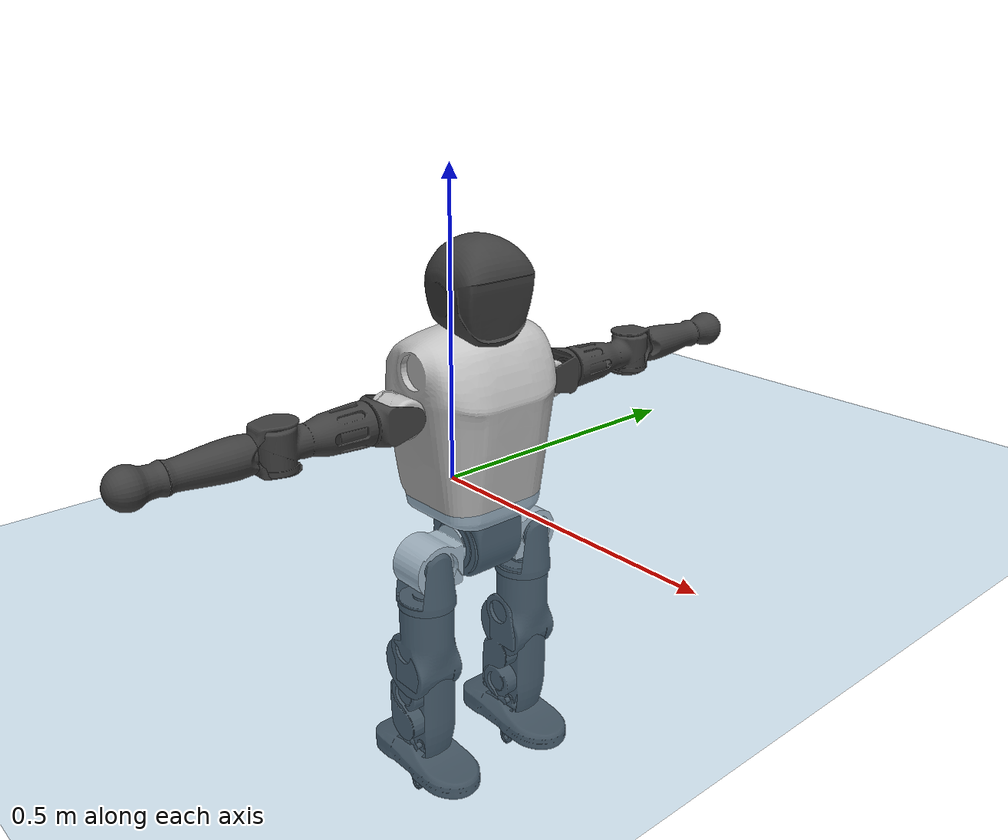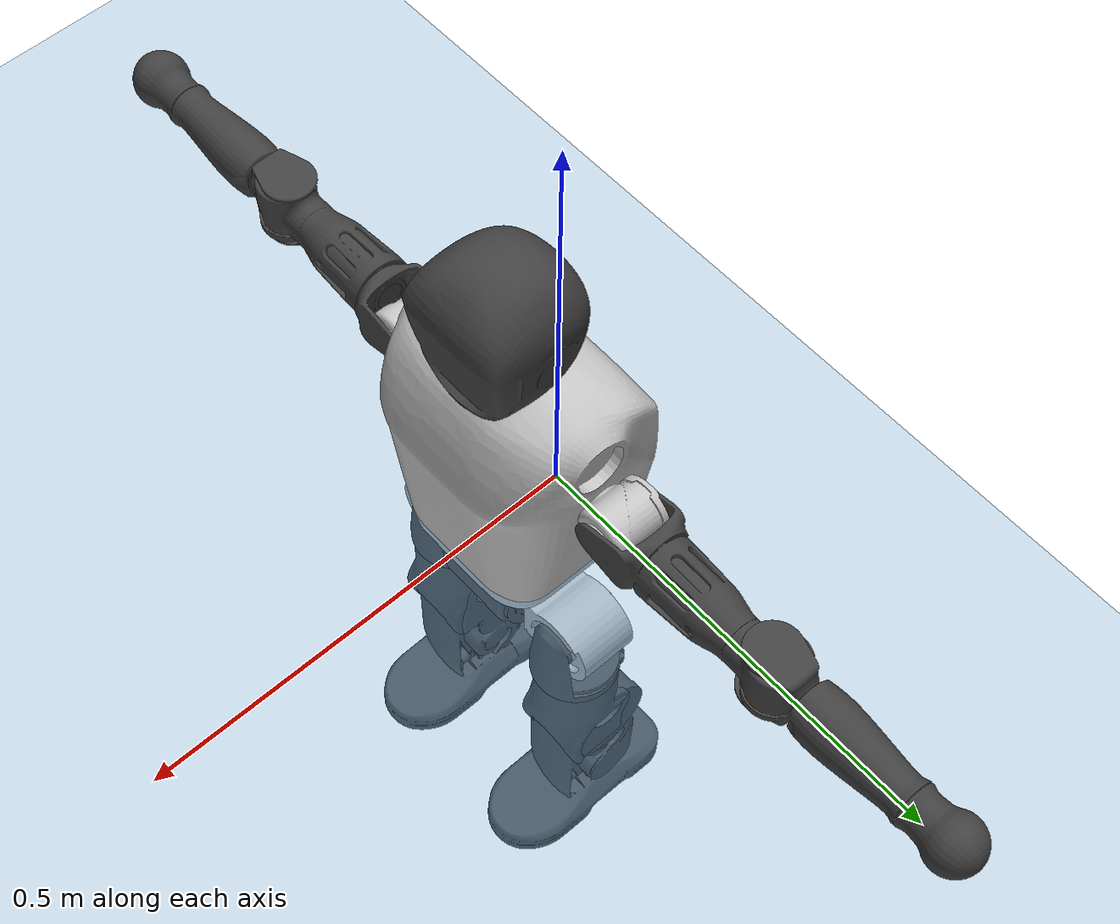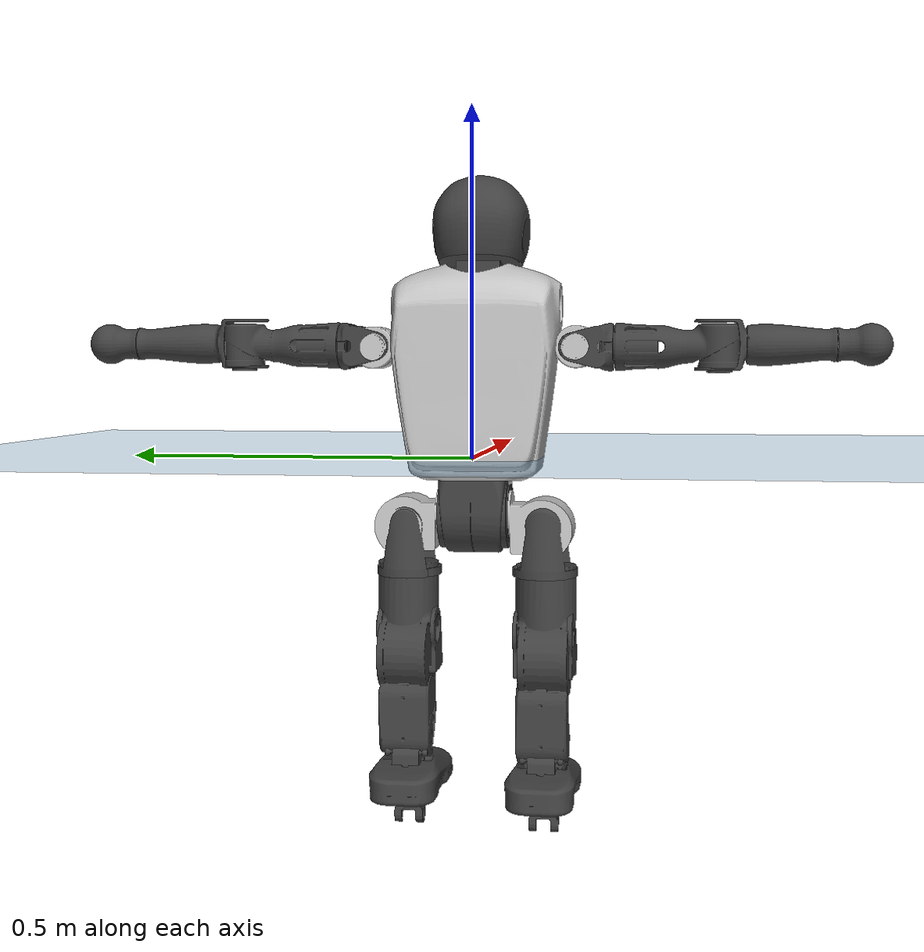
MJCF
<mujoco model="T1">
  <compiler angle="radian" assetdir="assets" balanceinertia="true" inertiafromgeom="false"/>

  <option timestep="0.005" density="1.2" viscosity="2e-05"/>

  <size nkey="1"/>

  <visual>
    <quality shadowsize="8192"/>
    <map shadowclip="0.5"/>
  </visual>

  <default>
    <default class="/">
      <joint armature="0.01" damping="0.01" frictionloss="0.1"/>
      <geom contype="0" conaffinity="0" group="1" solref="-1000 -80"/>
      <site size="0.01 0.005 0.005" group="5"/>
      <general forcelimited="true" biastype="affine" gainprm="25" biasprm="0 -25 -0.6"/>
      <default class="t1">
        <geom rgba="0.25 0.25 0.25 1"/>
        <default class="visual">
          <geom type="mesh" group="2"/>
        </default>
        <default class="collision">
          <geom group="3"/>
        </default>
        <default class="foot">
          <geom size="0.1115 0.05 0.015" type="box" condim="6" group="4" priority="1" solimp="0.015 1 0.015"/>
        </default>
        <default class="reward_collision_sphere">
          <geom group="5" rgba="1 0 0 1"/>
        </default>
      </default>
    </default>
  </default>

  <asset>
    <texture type="skybox" colorspace="auto" name="//unnamed_texture_0" builtin="gradient" rgb1="0.95 0.95 0.95" rgb2="0.95 0.95 0.95" width="100" height="600"/>
    <texture type="2d" colorspace="auto" name="texplane" builtin="checker" rgb1="0.345 0.575 0.748" rgb2="0.345 0.575 0.748" markrgb="1 1 1" width="512" height="512"/>
    <material name="MatPlane" class="/" texture="texplane" texuniform="true" texrepeat="2 2" specular="0.9"/>
    <mesh name="Trunk" class="/" file="Trunk.stl"/>
    <mesh name="H1" class="/" file="H1.stl"/>
    <mesh name="H2" class="/" file="H2.stl"/>
    <mesh name="AL1" class="/" file="AL1.stl"/>
    <mesh name="AL2" class="/" file="AL2.stl"/>
    <mesh name="AL3" class="/" file="AL3.stl"/>
    <mesh name="left_hand_link" class="/" file="left_hand_link.stl"/>
    <mesh name="AR1" class="/" file="AR1.stl"/>
    <mesh name="AR2" class="/" file="AR2.stl"/>
    <mesh name="AR3" class="/" file="AR3.stl"/>
    <mesh name="right_hand_link" class="/" file="right_hand_link.stl"/>
    <mesh name="Waist" class="/" file="Waist.stl"/>
    <mesh name="Hip_Pitch_Left" class="/" file="Hip_Pitch_Left.stl"/>
    <mesh name="Hip_Roll_Left" class="/" file="Hip_Roll_Left.stl"/>
    <mesh name="Hip_Yaw_Left" class="/" file="Hip_Yaw_Left.stl"/>
    <mesh name="Shank_Left" class="/" file="Shank_Left.stl"/>
    <mesh name="Ankle_Cross_Left" class="/" file="Ankle_Cross_Left.stl"/>
    <mesh name="left_foot_link" class="/" file="left_foot_link.stl"/>
    <mesh name="Hip_Pitch_Right" class="/" file="Hip_Pitch_Right.stl"/>
    <mesh name="Hip_Roll_Right" class="/" file="Hip_Roll_Right.stl"/>
    <mesh name="Hip_Yaw_Right" class="/" file="Hip_Yaw_Right.stl"/>
    <mesh name="Shank_Right" class="/" file="Shank_Right.stl"/>
    <mesh name="Ankle_Cross_Right" class="/" file="Ankle_Cross_Right.stl"/>
    <mesh name="right_foot_link" class="/" file="right_foot_link.stl"/>
  </asset>

  <worldbody>
    <geom name="floor" class="/" size="100 100 0.125" type="plane" group="0" material="MatPlane"/>
    <light name="toplight_shadow" class="/" pos="0 0 5" dir="0.0990148 0.0990148 -0.990148" type="directional" ambient="0.04 0.04 0.04" diffuse="0.55 0.55 0.55" specular="0.12 0.12 0.12"/>
    <light name="toplight_fill" class="/" pos="0 0 5" dir="0.0990148 0.0990148 -0.990148" type="directional" castshadow="false" ambient="0.04 0.04 0.04" diffuse="0.3 0.3 0.3" specular="0.08 0.08 0.08"/>
    <body name="trunk" childclass="t1" pos="0.000740164 2.45257e-05 0.00130268" quat="1 -0.000103342 -2.73071e-05 6.30806e-05">
      <inertial pos="0.049409 -0.000891636 0.07389" quat="0.999795 0.00530117 -0.0166866 -0.0101345" mass="7.61887" diaginertia="0.0588215 0.0614335 0.0109884"/>
      <joint name="//unnamed_joint_0" type="free" armature="0" damping="0" frictionloss="0"/>
      <geom name="//unnamed_geom_1" class="visual" rgba="0.76 0.76 0.76 1" mesh="Trunk"/>
      <geom name="//unnamed_geom_2" class="collision" size="0.0646075 0.0861433 0.129215" pos="0.054881 0 0.086178" type="box"/>
      <geom name="//unnamed_geom_3" class="reward_collision_sphere" size="0.0990648" pos="0.054881 0 0.071815"/>
      <geom name="//unnamed_geom_4" class="reward_collision_sphere" size="0.0129215" pos="0.054881 0.0808745 0"/>
      <geom name="//unnamed_geom_5" class="reward_collision_sphere" size="0.0129215" pos="0.054881 -0.0808745 0"/>
      <geom name="//unnamed_geom_6" class="reward_collision_sphere" size="0.0129215" pos="0.054881 0.101807 0.129267"/>
      <geom name="//unnamed_geom_7" class="reward_collision_sphere" size="0.0129215" pos="0.054881 -0.101807 0.129267"/>
      <site name="imu" pos="-0.00559917 -0.0020224 0.0139202" size="0.00861433"/>
      <camera name="track" pos="0 -1.90293 0" quat="0.707107 0.707107 0 0" mode="trackcom"/>
      <camera name="ego_camera" pos="0.111591 0 0.301623" quat="-0.5 -0.5 0.5 0.5"/>
      <body name="H1" pos="0.0532644 -0.00279984 0.17486" quat="0.999999 0.00128333 -0.000117165 4.97737e-05">
        <inertial pos="-0.00148719 -0.00285018 0.0397262" quat="0.763608 -0.0232237 0.00827852 0.64521" mass="0.277383" diaginertia="0.000152786 0.000173705 2.84791e-05"/>
        <joint name="AAHead_yaw" pos="0 0 0" axis="0.00282915 0.000667322 0.999996" range="-1.51946 1.61424" armature="0.00949395" damping="0.019018" frictionloss="0.0764706"/>
        <geom name="//unnamed_geom_8" class="visual" mesh="H1"/>
        <body name="H2" pos="-0.00143236 1.60175e-05 0.0431288" quat="1 -0.000108402 1.78012e-05 0.000517665">
          <inertial pos="0.00563538 0.000756022 0.0729355" quat="0.988577 0.114089 -0.070613 -0.068652" mass="0.393642" diaginertia="0.00133218 0.00143694 0.00032206"/>
          <joint name="Head_pitch" pos="0 0 0" axis="-0.00735551 -0.999943 -0.00778137" stiffness="0.0063875" range="-1.21138 0.390383" armature="0.00828739" damping="0" frictionloss="0.0872784"/>
          <geom name="//unnamed_geom_9" class="visual" mesh="H2"/>
          <geom name="//unnamed_geom_10" class="collision" size="0.0689146" pos="0.00914684 0 0.0789965"/>
          <geom name="//unnamed_geom_11" class="reward_collision_sphere" size="0.077529" pos="0.0182937 0 0.071815"/>
        </body>
      </body>
      <body name="AL1" pos="0.0519101 0.101228 0.156864" quat="0.999999 -0.000887517 -0.00026418 -0.000640387">
        <inertial pos="0.00229717 0.0455193 -0.000166239" quat="0.503363 0.499913 -0.51135 0.485009" mass="0.327405" diaginertia="0.000853062 0.000996698 5.72431e-05"/>
        <joint name="Left_Shoulder_Pitch" pos="0 0 0" axis="-0.0019335 0.999934 0.0113464" stiffness="0.00576134" range="-3.31352 1.17414" armature="0.00925031" damping="0.0123923" frictionloss="0.084424"/>
        <geom name="//unnamed_geom_12" class="visual" rgba="0.76 0.76 0.76 1" mesh="AL1"/>
        <body name="AL2" pos="0.00323686 0.0452167 0.00220618" quat="1 -0.000328938 0.000418099 -4.82171e-05">
          <inertial pos="0.00694146 0.0373248 -0.00157356" quat="0.487552 0.509104 -0.491677 0.511234" mass="0.0999784" diaginertia="0.000256965 0.000273088 3.30346e-05"/>
          <joint name="Left_Shoulder_Roll" pos="0 0 0" axis="-0.99992 -0.00961578 -0.00827384" range="-1.6208 1.71258" armature="0.00979557" damping="0.0116453" frictionloss="0.0745871"/>
          <geom name="//unnamed_geom_13" class="visual" mesh="AL2"/>
          <body name="AL3" pos="0.00400432 0.0580488 0.00107889" quat="1 0.000433144 -0.000712635 6.81175e-06">
            <inertial pos="-1.78509e-05 0.0807227 -0.000217184" quat="0.706228 0.707966 -0.00365794 0.00359335" mass="0.649288" diaginertia="0.00827404 0.00986248 0.000114316"/>
            <joint name="Left_Elbow_Pitch" pos="0 0 0" axis="-0.00393227 -0.999977 -0.00559188" stiffness="0.0189462" range="-2.32811 2.24544" armature="0.0081701" damping="0.0109422" frictionloss="0.0820409"/>
            <geom name="//unnamed_geom_14" class="visual" mesh="AL3"/>
            <geom name="//unnamed_geom_15" class="collision" size="0.025843 0.0646075" pos="0 0.0475733 0" quat="0.707105 0.707108 0 0" type="cylinder"/>
            <geom name="//unnamed_geom_16" class="reward_collision_sphere" size="0.0310116"/>
            <body name="left_hand_link" pos="0.00085609 0.139162 0.00302792" quat="1 -5.52422e-05 -8.74963e-05 -2.40089e-05">
              <inertial pos="0.000142972 0.101757 0.000366136" quat="0.706837 0.707376 0.000137306 -0.000544572" mass="0.213911" diaginertia="0.00550741 0.00638529 4.04244e-05"/>
              <joint name="Left_Elbow_Yaw" pos="0 0 0" axis="-0.00346431 0.00346592 0.999988" range="-2.44002 0.0212244" armature="0.00850179" damping="0.00163482" frictionloss="0.0813479"/>
              <geom name="//unnamed_geom_17" class="visual" mesh="left_hand_link"/>
              <geom name="//unnamed_geom_18" class="collision" size="0.025843 0.0753754" pos="0 0.12369 0" quat="0.707105 0.707108 0 0" type="cylinder"/>
              <geom name="//unnamed_geom_19" class="reward_collision_sphere" size="0.0430716"/>
              <geom name="//unnamed_geom_20" class="reward_collision_sphere" size="0.0301502" pos="0 0.104661 0"/>
              <geom name="//unnamed_geom_21" class="reward_collision_sphere" size="0.0301502" pos="0 0.204565 0"/>
            </body>
          </body>
        </body>
      </body>
      <body name="AR1" pos="0.0518937 -0.0988628 0.157983" quat="0.999999 0.000385375 0.000922841 -0.000564626">
        <inertial pos="-0.00194831 -0.0446056 0.00089469" quat="0.503055 0.494423 -0.505432 0.497011" mass="0.350159" diaginertia="0.000864903 0.000982297 5.65299e-05"/>
        <joint name="Right_Shoulder_Pitch" pos="0 0 0" axis="-0.012953 -0.999889 0.00731359" range="-1.23443 3.28731" armature="0.00900517" damping="0.0114164" frictionloss="0.0848461"/>
        <geom name="//unnamed_geom_22" class="visual" rgba="0.76 0.76 0.76 1" mesh="AR1"/>
        <body name="AR2" pos="0.000163166 -0.0430687 -0.000854893" quat="0.999999 -0.000557958 0.000673447 0.00111559">
          <inertial pos="0.000824488 -0.0332022 -0.00184301" quat="0.515857 0.491956 -0.500719 0.491072" mass="0.106957" diaginertia="0.000265082 0.000283249 3.39265e-05"/>
          <joint name="Right_Shoulder_Roll" pos="0 0 0" axis="-0.999999 0.00106352 7.82816e-05" stiffness="0.00774443" range="-1.68728 1.57592" armature="0.00818521" damping="0.0188247" frictionloss="0.0858649"/>
          <geom name="//unnamed_geom_23" class="visual" mesh="AR2"/>
          <body name="AR3" pos="-0.00273609 -0.0587682 0.000413079" quat="1 -4.46662e-05 -9.80073e-05 -1.2419e-05">
            <inertial pos="-0.000358921 -0.0834691 -6.88372e-05" quat="0.703349 0.710827 -0.000569244 -0.00495666" mass="0.631073" diaginertia="0.0079772 0.01028 0.000115884"/>
            <joint name="Right_Elbow_Pitch" pos="0 0 0" axis="0.00104837 0.999996 0.00269114" range="-2.27053 2.27717" armature="0.00807753" damping="0.0177127" frictionloss="0.0841809"/>
            <geom name="//unnamed_geom_24" class="visual" mesh="AR3"/>
            <geom name="//unnamed_geom_25" class="collision" size="0.025843 0.0646075" pos="0 -0.0475733 0" quat="0.707105 0.707108 0 0" type="cylinder"/>
            <geom name="//unnamed_geom_26" class="reward_collision_sphere" size="0.0310116"/>
            <body name="right_hand_link" pos="-0.000443345 -0.140539 0.00229941" quat="0.999999 -0.000519597 0.000122248 0.0013401">
              <inertial pos="0.00122416 -0.104335 0.000404189" quat="0.706947 0.707266 -5.18785e-05 0.000361453" mass="0.214362" diaginertia="0.00512852 0.00632789 4.12196e-05"/>
              <joint name="Right_Elbow_Yaw" pos="0 0 0" axis="0.0035779 -0.00355085 0.999987" range="-0.0250679 2.47027" armature="0.00814609" damping="0.00406974" frictionloss="0.0864474"/>
              <geom name="//unnamed_geom_27" class="visual" mesh="right_hand_link"/>
              <geom name="//unnamed_geom_28" class="collision" size="0.025843 0.0753754" pos="0 -0.12369 0" quat="0.707105 0.707108 0 0" type="cylinder"/>
              <geom name="//unnamed_geom_29" class="reward_collision_sphere" size="0.0430716"/>
              <geom name="//unnamed_geom_30" class="reward_collision_sphere" size="0.0301502" pos="0 -0.104661 0"/>
              <geom name="//unnamed_geom_31" class="reward_collision_sphere" size="0.0301502" pos="0 -0.204565 0"/>
            </body>
          </body>
        </body>
      </body>
      <body name="Waist" pos="0.0590068 0.00297873 -0.0840767" quat="1 -0.000581673 -5.78935e-05 -0.000456268">
        <inertial pos="0.00134384 -0.0002138 0.0062121" quat="0.984677 0.0119121 -0.173827 0.00734221" mass="1.66816" diaginertia="0.00338684 0.00408454 0.00090428"/>
        <joint name="Waist" pos="0 0 0" axis="-0.00609574 -0.00690478 0.999958" range="-1.59441 1.62251" armature="0.00832488" damping="0.023787" frictionloss="0.0854996"/>
        <geom name="//unnamed_geom_32" class="visual" mesh="Waist"/>
        <body name="Hip_Pitch_Left" pos="0.00087975 0.10117 0.000661021" quat="1 -0.00019068 -0.000141901 -0.000181775">
          <inertial pos="-0.00100201 -0.00794248 -0.0134045" quat="0.975414 0.220042 0.0120483 0.00212073" mass="0.621153" diaginertia="0.00110946 0.00108345 0.000231186"/>
          <joint name="Left_Hip_Pitch" pos="0 0 0" axis="0.00562534 0.999842 -0.0168407" stiffness="0.00907348" range="-1.78711 1.61732" armature="0.00867003" damping="0.0287011" frictionloss="0.0858114"/>
          <geom name="//unnamed_geom_33" class="visual" rgba="0.76 0.76 0.76 1" mesh="Hip_Pitch_Left"/>
          <body name="Hip_Roll_Left" pos="0.00308687 -0.00132524 -0.0166409" quat="1 -3.82866e-05 -7.64451e-05 4.54802e-05">
            <inertial pos="0.00193443 0.000877905 -0.0414513" quat="0.704821 -0.00967632 -0.00538152 0.709298" mass="0.244565" diaginertia="0.00111037 0.00116395 9.63616e-05"/>
            <joint name="Left_Hip_Roll" pos="0 0 0" axis="-0.999987 0.00266888 -0.00434512" range="-1.52046 0.157337" armature="0.00885498" damping="0.0105619" frictionloss="0.0916842"/>
            <geom name="//unnamed_geom_34" class="visual" mesh="Hip_Roll_Left"/>
            <geom name="//unnamed_geom_35" class="reward_collision_sphere" size="0.0473788"/>
            <body name="Hip_Yaw_Left" pos="-0.00168227 0.00136764 -0.0578624" quat="0.999999 0.000284356 3.76204e-05 -0.00101146">
              <inertial pos="-0.0067774 -0.000359303 -0.0638614" quat="0.693928 -0.0351785 -0.0287519 0.718609" mass="1.33784" diaginertia="0.0166469 0.0200503 0.000511916"/>
              <joint name="Left_Hip_Yaw" pos="0 0 0" axis="0.0011072 -0.000446571 -0.999999" stiffness="0.00865291" range="-1.01128 1.03192" armature="0.00886384" damping="0" frictionloss="0.0857766"/>
              <geom name="//unnamed_geom_36" class="visual" mesh="Hip_Yaw_Left"/>
              <geom name="//unnamed_geom_37" class="collision" size="0.0430716 0.0689146" type="cylinder"/>
              <body name="Shank_Left" pos="-0.0113139 -0.00250616 -0.0979998" quat="0.999999 -0.00109688 0.000566157 -3.41609e-05">
                <inertial pos="-0.00464928 0.00272092 -0.0887992" quat="0.997978 0.00370013 -0.0194942 0.0603786" mass="1.13088" diaginertia="0.0212545 0.0273947 0.000346988"/>
                <joint name="Left_Knee_Pitch" pos="0 0 0" axis="0.00400517 0.999986 0.00359965" range="0.0500431 2.32563" armature="0.00966151" damping="0.0119258" frictionloss="0.0892307"/>
                <geom name="//unnamed_geom_38" class="visual" mesh="Shank_Left"/>
                <geom name="//unnamed_geom_39" class="collision" size="0.0430716 0.0646075" pos="0 0 -0.086178" type="cylinder"/>
                <geom name="//unnamed_geom_40" class="reward_collision_sphere" size="0.0559931"/>
                <body name="Ankle_Cross_Left" pos="-0.0026219 -0.00170655 -0.199996" quat="0.999999 -0.000230594 0.000742036 -0.000903269">
                  <inertial pos="-0.00391845 0.00246973 -0.00448809" quat="0.448822 0.540399 0.557089 0.442921" mass="0.0473941" diaginertia="1.87382e-05 1.95383e-05 2.10372e-06"/>
                  <joint name="Left_Ankle_Pitch" pos="0 0 0" axis="-0.0111777 0.999905 -0.00801024" range="-0.83895 0.39946" armature="0.00744679" damping="0.0277985" frictionloss="0.0881367"/>
                  <geom name="//unnamed_geom_41" class="visual" mesh="Ankle_Cross_Left"/>
                  <body name="left_foot_link" pos="0.000400694 -0.001591 -0.00826608" quat="0.999999 -0.000288823 0.00116047 0.000473992">
                    <inertial pos="-0.00253509 0.000182693 -0.00475798" quat="0.0033059 0.620508 0.00353204 0.784185" mass="0.420339" diaginertia="0.00176074 0.00185504 0.000428456"/>
                    <joint name="Left_Ankle_Roll" pos="0 0 0" axis="-0.999885 -0.00884179 -0.0123486" stiffness="0.00395948" range="-0.484113 0.387157" armature="0.00880846" damping="0" frictionloss="0.087801"/>
                    <geom name="//unnamed_geom_42" class="visual" mesh="left_foot_link"/>
                    <geom name="left_foot" class="foot" size="0.105647 0.0349569 0.0143625" pos="0.00914684 0 -0.0107722"/>
                    <geom name="//unnamed_geom_44" class="reward_collision_sphere" size="0.0447945" pos="0.00914684 0 -0.0107722"/>
                    <geom name="//unnamed_geom_45" class="reward_collision_sphere" size="0.025843" pos="0.086895 -0.0218837 -0.0107722"/>
                    <geom name="//unnamed_geom_46" class="reward_collision_sphere" size="0.025843" pos="-0.0640279 -0.0218837 -0.0107722"/>
                    <site name="left_foot" class="foot" pos="0.00914684 0 -0.0107722" size="0.00861433"/>
                  </body>
                </body>
              </body>
            </body>
          </body>
        </body>
        <body name="Hip_Pitch_Right" pos="-0.00378579 -0.100452 -0.00189623" quat="0.999999 3.97405e-05 0.000785645 -0.00112891">
          <inertial pos="0.00012263 0.00996653 -0.0132094" quat="0.973628 -0.227698 0.012541 -0.00662072" mass="0.671773" diaginertia="0.00118846 0.00116677 0.000249676"/>
          <joint name="Right_Hip_Pitch" pos="0 0 0" axis="-0.00379525 -0.999978 0.00535453" range="-1.55411 1.7839" armature="0.008955" damping="0" frictionloss="0.097207"/>
          <geom name="//unnamed_geom_47" class="visual" rgba="0.76 0.76 0.76 1" mesh="Hip_Pitch_Right"/>
          <body name="Hip_Roll_Right" pos="-0.000858691 -0.00245738 -0.0126099" quat="1 -0.000187416 0.000665927 -0.000103613">
            <inertial pos="0.00025397 0.00185072 -0.0405148" quat="0.710192 -0.00850072 -0.00948665 0.703893" mass="0.240972" diaginertia="0.00106621 0.00119023 9.6884e-05"/>
            <joint name="Right_Hip_Roll" pos="0 0 0" axis="-0.999983 -0.00234936 0.0052696" range="-0.212367 1.59922" armature="0.00844901" damping="0.0170843" frictionloss="0.0857361"/>
            <geom name="//unnamed_geom_48" class="visual" mesh="Hip_Roll_Right"/>
            <geom name="//unnamed_geom_49" class="reward_collision_sphere" size="0.0473788"/>
            <body name="Hip_Yaw_Right" pos="0.000218866 -0.00123235 -0.0610303" quat="1 -0.000132708 3.32211e-05 4.77809e-05">
              <inertial pos="-0.0036182 -0.00219023 -0.0620361" quat="0.715474 -0.0289306 -0.0233318 0.69765" mass="1.44018" diaginertia="0.0165756 0.0194493 0.000514239"/>
              <joint name="Right_Hip_Yaw" pos="0 0 0" axis="-0.0165276 -0.00847122 -0.999828" stiffness="0.0128173" range="-0.970685 1.03167" armature="0.00861065" damping="0.010986" frictionloss="0.0859468"/>
              <geom name="//unnamed_geom_50" class="visual" mesh="Hip_Yaw_Right"/>
              <geom name="//unnamed_geom_51" class="collision" size="0.0430716 0.0689146" type="cylinder"/>
              <body name="Shank_Right" pos="-0.0128324 0.00194578 -0.0991064" quat="1 1.40789e-06 -4.06167e-07 -2.86302e-06">
                <inertial pos="-0.00480583 0.00219015 -0.0896117" quat="0.999168 0.0024054 -0.0220321 -0.0342458" mass="1.11354" diaginertia="0.0223172 0.026745 0.000364095"/>
                <joint name="Right_Knee_Pitch" pos="0 0 0" axis="-0.0130763 -0.99991 -0.00306063" stiffness="0.0077425" range="-2.38942 0.0133429" armature="0.00852621" damping="0.0219493" frictionloss="0.0982228"/>
                <geom name="//unnamed_geom_52" class="visual" mesh="Shank_Right"/>
                <geom name="//unnamed_geom_53" class="collision" size="0.0430716 0.0646075" pos="0 0 -0.086178" type="cylinder"/>
                <geom name="//unnamed_geom_54" class="reward_collision_sphere" size="0.0559931"/>
                <body name="Ankle_Cross_Right" pos="-0.00120447 -2.25339e-05 -0.202831" quat="1 -0.000188349 0.000167278 6.06827e-05">
                  <inertial pos="-0.00319633 -0.000425078 -0.00568277" quat="0.444335 0.557731 0.539644 0.447533" mass="0.0453834" diaginertia="1.81725e-05 1.9638e-05 2.1006e-06"/>
                  <joint name="Right_Ankle_Pitch" pos="0 0 0" axis="-0.00268566 -0.999974 -0.0066475" stiffness="0.015872" range="-0.343546 0.83357" armature="0.00914655" damping="0" frictionloss="0.0915474"/>
                  <geom name="//unnamed_geom_55" class="visual" mesh="Ankle_Cross_Right"/>
                  <body name="right_foot_link" pos="0.00133823 -0.000120934 -0.00679937" quat="0.999999 -0.000299467 0.00126797 2.48928e-06">
                    <inertial pos="0.0021662 -0.00012953 -0.00717434" quat="0.00253102 0.623921 -0.00029547 0.781483" mass="0.457945" diaginertia="0.00174143 0.0019351 0.000417304"/>
                    <joint name="Right_Ankle_Roll" pos="0 0 0" axis="-0.999981 -0.0055019 0.00287896" range="-0.466371 0.495159" armature="0.007847" damping="0.0084482" frictionloss="0.0861276"/>
                    <geom name="//unnamed_geom_56" class="visual" mesh="right_foot_link"/>
                    <geom name="right_foot" class="foot" size="0.10708 0.0404452 0.0128952" pos="0.00914684 0 -0.0107722"/>
                    <geom name="//unnamed_geom_58" class="reward_collision_sphere" size="0.0344573"/>
                    <geom name="//unnamed_geom_59" class="reward_collision_sphere" size="0.025843" pos="0.00914684 0 -0.0107722"/>
                    <geom name="//unnamed_geom_60" class="reward_collision_sphere" size="0.025843" pos="0.086895 0.0218837 -0.0107722"/>
                    <geom name="//unnamed_geom_61" class="reward_collision_sphere" size="0.025843" pos="-0.0640279 0.0218837 -0.0107722"/>
                    <site name="right_foot" class="foot" pos="0.00914684 0 -0.0107722" size="0.00861433"/>
                  </body>
                </body>
              </body>
            </body>
          </body>
        </body>
      </body>
    </body>
  </worldbody>

  <contact>
    <pair class="/" geom1="floor" geom2="left_foot" name="//unnamed_contact_0"/>
    <pair class="/" geom1="floor" geom2="right_foot" name="//unnamed_contact_1"/>
  </contact>

  <actuator>
    <general name="AAHead_yaw" class="/" joint="AAHead_yaw" forcerange="-5.405 5.405" gainprm="22.7178" biasprm="0 -22.7178 -0.559788"/>
    <general name="Head_pitch" class="/" joint="Head_pitch" forcerange="-6.15525 6.15525" gainprm="22.7178" biasprm="0 -22.7178 -0.559788"/>
    <general name="Left_Shoulder_Pitch" class="/" joint="Left_Shoulder_Pitch" forcerange="-16.1108 16.1108" gainprm="22.7178" biasprm="0 -22.7178 -0.559788"/>
    <general name="Left_Shoulder_Roll" class="/" joint="Left_Shoulder_Roll" forcerange="-15.7324 15.7324" gainprm="22.7178" biasprm="0 -22.7178 -0.559788"/>
    <general name="Left_Elbow_Pitch" class="/" joint="Left_Elbow_Pitch" forcerange="-16.0784 16.0784" gainprm="22.7178" biasprm="0 -22.7178 -0.559788"/>
    <general name="Left_Elbow_Yaw" class="/" joint="Left_Elbow_Yaw" forcerange="-14.8705 14.8705" gainprm="22.7178" biasprm="0 -22.7178 -0.559788"/>
    <general name="Right_Shoulder_Pitch" class="/" joint="Right_Shoulder_Pitch" forcerange="-16.1417 16.1417" gainprm="22.7178" biasprm="0 -22.7178 -0.559788"/>
    <general name="Right_Shoulder_Roll" class="/" joint="Right_Shoulder_Roll" forcerange="-15.2498 15.2498" gainprm="22.7178" biasprm="0 -22.7178 -0.559788"/>
    <general name="Right_Elbow_Pitch" class="/" joint="Right_Elbow_Pitch" forcerange="-14.2066 14.2066" gainprm="22.7178" biasprm="0 -22.7178 -0.559788"/>
    <general name="Right_Elbow_Yaw" class="/" joint="Right_Elbow_Yaw" forcerange="-15.865 15.865" gainprm="22.7178" biasprm="0 -22.7178 -0.559788"/>
    <general name="Waist" class="/" joint="Waist" forcerange="-28.6458 28.6458" gainprm="22.7178" biasprm="0 -22.7178 -0.559788"/>
    <general name="Left_Hip_Pitch" class="/" joint="Left_Hip_Pitch" forcerange="-40.5698 40.5698" gainprm="22.7178" biasprm="0 -22.7178 -0.559788"/>
    <general name="Left_Hip_Roll" class="/" joint="Left_Hip_Roll" forcerange="-27.57 27.57" gainprm="22.7178" biasprm="0 -22.7178 -0.559788"/>
    <general name="Left_Hip_Yaw" class="/" joint="Left_Hip_Yaw" forcerange="-28.5188 28.5188" gainprm="22.7178" biasprm="0 -22.7178 -0.559788"/>
    <general name="Left_Knee_Pitch" class="/" joint="Left_Knee_Pitch" forcerange="-52.4522 52.4522" gainprm="22.7178" biasprm="0 -22.7178 -0.559788"/>
    <general name="Left_Ankle_Pitch" class="/" joint="Left_Ankle_Pitch" forcerange="-18.057 18.057" gainprm="22.7178" biasprm="0 -22.7178 -0.559788"/>
    <general name="Left_Ankle_Roll" class="/" joint="Left_Ankle_Roll" forcerange="-12.7956 12.7956" gainprm="22.7178" biasprm="0 -22.7178 -0.559788"/>
    <general name="Right_Hip_Pitch" class="/" joint="Right_Hip_Pitch" forcerange="-38.2054 38.2054" gainprm="22.7178" biasprm="0 -22.7178 -0.559788"/>
    <general name="Right_Hip_Roll" class="/" joint="Right_Hip_Roll" forcerange="-27.6959 27.6959" gainprm="22.7178" biasprm="0 -22.7178 -0.559788"/>
    <general name="Right_Hip_Yaw" class="/" joint="Right_Hip_Yaw" forcerange="-28.4318 28.4318" gainprm="22.7178" biasprm="0 -22.7178 -0.559788"/>
    <general name="Right_Knee_Pitch" class="/" joint="Right_Knee_Pitch" forcerange="-56.4495 56.4495" gainprm="22.7178" biasprm="0 -22.7178 -0.559788"/>
    <general name="Right_Ankle_Pitch" class="/" joint="Right_Ankle_Pitch" forcerange="-15.5187 15.5187" gainprm="22.7178" biasprm="0 -22.7178 -0.559788"/>
    <general name="Right_Ankle_Roll" class="/" joint="Right_Ankle_Roll" forcerange="-13.1567 13.1567" gainprm="22.7178" biasprm="0 -22.7178 -0.559788"/>
  </actuator>

  <sensor>
    <gyro site="imu" name="imu_angular_velocity"/>
    <velocimeter site="imu" name="imu_linear_velocity"/>
    <framelinvel objtype="site" objname="left_foot" name="left_foot_global_linear_velocity"/>
    <framelinvel objtype="site" objname="right_foot" name="right_foot_global_linear_velocity"/>
  </sensor>

  <keyframe>
    <key name="home" qpos="0 0 0.6385 1 0 0 0 0 0 0 1.4 0 -0.4 0 -1.4 0 0.4 0 -0.4 0 0 0.8 -0.4 0 0.4 0 0 -0.8 0.4 0"/>
  </keyframe>
</mujoco>
